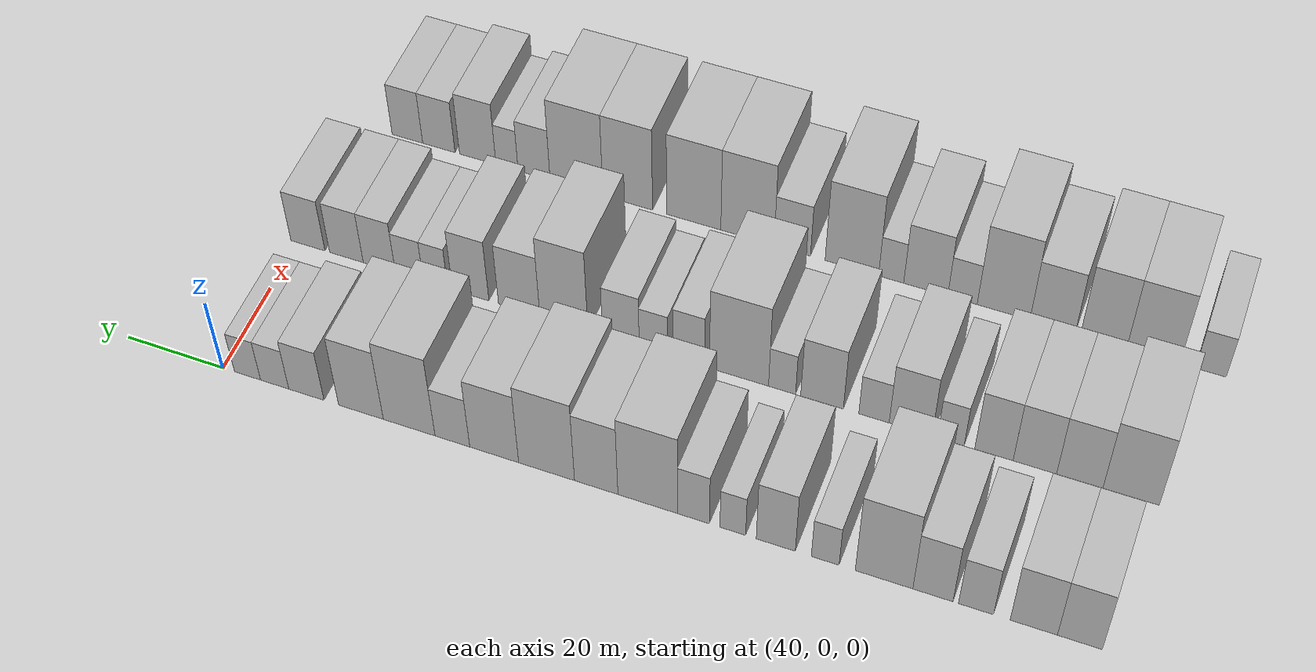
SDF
<sdf version="1.6">
 <world name="default">
  <include><name>ground_plane_1</name><uri>model://HANNAS_ground_plane</uri></include>
  <model name="building_21">
   <static>1</static>
   <pose>50.0000 -165.5699 0 0.000000 0.000000 0.000000</pose>
   <link name="link">
    <pose>0 0 9.00 0 0 0</pose>
    <collision name="collision"><geometry><box><size>20.0000 7.9845 18.0000</size></box></geometry></collision>
    <visual name="visual">
     <cast_shadows>0</cast_shadows>
     <geometry><box><size>20.0000 7.9845 18.0000</size></box></geometry>
     <material>
      <script>
       <uri>model://HANNAS_wall/materials/scripts</uri>
       <uri>model://HANNAS_wall/materials/textures</uri>
       <name>vrc/HANNAS_wall</name>
      </script>
     </material>
    </visual>
   </link>
  </model>
  <model name="building_22">
   <static>1</static>
   <pose>50.0000 -157.3388 0 0.000000 0.000000 0.000000</pose>
   <link name="link">
    <pose>0 0 9.00 0 0 0</pose>
    <collision name="collision"><geometry><box><size>20.0000 8.4777 18.0000</size></box></geometry></collision>
    <visual name="visual">
     <cast_shadows>0</cast_shadows>
     <geometry><box><size>20.0000 8.4777 18.0000</size></box></geometry>
     <material>
      <script>
       <uri>model://HANNAS_wall/materials/scripts</uri>
       <uri>model://HANNAS_wall/materials/textures</uri>
       <name>vrc/HANNAS_wall</name>
      </script>
     </material>
    </visual>
   </link>
  </model>
  <model name="building_23">
   <static>1</static>
   <pose>50.0000 -146.9242 0 0.000000 0.000000 0.000000</pose>
   <link name="link">
    <pose>0 0 7.50 0 0 0</pose>
    <collision name="collision"><geometry><box><size>20.0000 6.3514 15.0000</size></box></geometry></collision>
    <visual name="visual">
     <cast_shadows>0</cast_shadows>
     <geometry><box><size>20.0000 6.3514 15.0000</size></box></geometry>
     <material>
      <script>
       <uri>model://HANNAS_wall/materials/scripts</uri>
       <uri>model://HANNAS_wall/materials/textures</uri>
       <name>vrc/HANNAS_wall</name>
      </script>
     </material>
    </visual>
   </link>
  </model>
  <model name="building_24">
   <static>1</static>
   <pose>50.0000 -139.0835 0 0.000000 0.000000 0.000000</pose>
   <link name="link">
    <pose>0 0 9.00 0 0 0</pose>
    <collision name="collision"><geometry><box><size>20.0000 7.3302 18.0000</size></box></geometry></collision>
    <visual name="visual">
     <cast_shadows>0</cast_shadows>
     <geometry><box><size>20.0000 7.3302 18.0000</size></box></geometry>
     <material>
      <script>
       <uri>model://HANNAS_wall/materials/scripts</uri>
       <uri>model://HANNAS_wall/materials/textures</uri>
       <name>vrc/HANNAS_wall</name>
      </script>
     </material>
    </visual>
   </link>
  </model>
  <model name="building_25">
   <static>1</static>
   <pose>50.0000 -130.1029 0 0.000000 0.000000 0.000000</pose>
   <link name="link">
    <pose>0 0 12.00 0 0 0</pose>
    <collision name="collision"><geometry><box><size>20.0000 10.6309 24.0000</size></box></geometry></collision>
    <visual name="visual">
     <cast_shadows>0</cast_shadows>
     <geometry><box><size>20.0000 10.6309 24.0000</size></box></geometry>
     <material>
      <script>
       <uri>model://HANNAS_wall/materials/scripts</uri>
       <uri>model://HANNAS_wall/materials/textures</uri>
       <name>vrc/HANNAS_wall</name>
      </script>
     </material>
    </visual>
   </link>
  </model>
  <model name="building_26">
   <static>1</static>
   <pose>50.0000 -119.1992 0 0.000000 0.000000 0.000000</pose>
   <link name="link">
    <pose>0 0 6.00 0 0 0</pose>
    <collision name="collision"><geometry><box><size>20.0000 5.1765 12.0000</size></box></geometry></collision>
    <visual name="visual">
     <cast_shadows>0</cast_shadows>
     <geometry><box><size>20.0000 5.1765 12.0000</size></box></geometry>
     <material>
      <script>
       <uri>model://HANNAS_wall/materials/scripts</uri>
       <uri>model://HANNAS_wall/materials/textures</uri>
       <name>vrc/HANNAS_wall</name>
      </script>
     </material>
    </visual>
   </link>
  </model>
  <model name="building_27">
   <static>1</static>
   <pose>50.0000 -109.9316 0 0.000000 0.000000 0.000000</pose>
   <link name="link">
    <pose>0 0 9.00 0 0 0</pose>
    <collision name="collision"><geometry><box><size>20.0000 7.3586 18.0000</size></box></geometry></collision>
    <visual name="visual">
     <cast_shadows>0</cast_shadows>
     <geometry><box><size>20.0000 7.3586 18.0000</size></box></geometry>
     <material>
      <script>
       <uri>model://HANNAS_wall/materials/scripts</uri>
       <uri>model://HANNAS_wall/materials/textures</uri>
       <name>vrc/HANNAS_wall</name>
      </script>
     </material>
    </visual>
   </link>
  </model>
  <model name="building_28">
   <static>1</static>
   <pose>50.0000 -101.8058 0 0.000000 0.000000 0.000000</pose>
   <link name="link">
    <pose>0 0 6.00 0 0 0</pose>
    <collision name="collision"><geometry><box><size>20.0000 4.8930 12.0000</size></box></geometry></collision>
    <visual name="visual">
     <cast_shadows>0</cast_shadows>
     <geometry><box><size>20.0000 4.8930 12.0000</size></box></geometry>
     <material>
      <script>
       <uri>model://HANNAS_wall/materials/scripts</uri>
       <uri>model://HANNAS_wall/materials/textures</uri>
       <name>vrc/HANNAS_wall</name>
      </script>
     </material>
    </visual>
   </link>
  </model>
  <model name="building_29">
   <static>1</static>
   <pose>50.0000 -94.3049 0 0.000000 0.000000 0.000000</pose>
   <link name="link">
    <pose>0 0 7.50 0 0 0</pose>
    <collision name="collision"><geometry><box><size>20.0000 6.1090 15.0000</size></box></geometry></collision>
    <visual name="visual">
     <cast_shadows>0</cast_shadows>
     <geometry><box><size>20.0000 6.1090 15.0000</size></box></geometry>
     <material>
      <script>
       <uri>model://HANNAS_wall/materials/scripts</uri>
       <uri>model://HANNAS_wall/materials/textures</uri>
       <name>vrc/HANNAS_wall</name>
      </script>
     </material>
    </visual>
   </link>
  </model>
  <model name="building_30">
   <static>1</static>
   <pose>50.0000 -85.5007 0 0.000000 0.000000 0.000000</pose>
   <link name="link">
    <pose>0 0 12.00 0 0 0</pose>
    <collision name="collision"><geometry><box><size>20.0000 11.4992 24.0000</size></box></geometry></collision>
    <visual name="visual">
     <cast_shadows>0</cast_shadows>
     <geometry><box><size>20.0000 11.4992 24.0000</size></box></geometry>
     <material>
      <script>
       <uri>model://HANNAS_wall/materials/scripts</uri>
       <uri>model://HANNAS_wall/materials/textures</uri>
       <name>vrc/HANNAS_wall</name>
      </script>
     </material>
    </visual>
   </link>
  </model>
  <model name="building_31">
   <static>1</static>
   <pose>50.0000 -75.5200 0 0.000000 0.000000 0.000000</pose>
   <link name="link">
    <pose>0 0 10.50 0 0 0</pose>
    <collision name="collision"><geometry><box><size>20.0000 8.4622 21.0000</size></box></geometry></collision>
    <visual name="visual">
     <cast_shadows>0</cast_shadows>
     <geometry><box><size>20.0000 8.4622 21.0000</size></box></geometry>
     <material>
      <script>
       <uri>model://HANNAS_wall/materials/scripts</uri>
       <uri>model://HANNAS_wall/materials/textures</uri>
       <name>vrc/HANNAS_wall</name>
      </script>
     </material>
    </visual>
   </link>
  </model>
  <model name="building_32">
   <static>1</static>
   <pose>50.0000 -65.7874 0 0.000000 0.000000 0.000000</pose>
   <link name="link">
    <pose>0 0 12.00 0 0 0</pose>
    <collision name="collision"><geometry><box><size>20.0000 11.0031 24.0000</size></box></geometry></collision>
    <visual name="visual">
     <cast_shadows>0</cast_shadows>
     <geometry><box><size>20.0000 11.0031 24.0000</size></box></geometry>
     <material>
      <script>
       <uri>model://HANNAS_wall/materials/scripts</uri>
       <uri>model://HANNAS_wall/materials/textures</uri>
       <name>vrc/HANNAS_wall</name>
      </script>
     </material>
    </visual>
   </link>
  </model>
  <model name="building_33">
   <static>1</static>
   <pose>50.0000 -55.4217 0 0.000000 0.000000 0.000000</pose>
   <link name="link">
    <pose>0 0 10.50 0 0 0</pose>
    <collision name="collision"><geometry><box><size>20.0000 9.7284 21.0000</size></box></geometry></collision>
    <visual name="visual">
     <cast_shadows>0</cast_shadows>
     <geometry><box><size>20.0000 9.7284 21.0000</size></box></geometry>
     <material>
      <script>
       <uri>model://HANNAS_wall/materials/scripts</uri>
       <uri>model://HANNAS_wall/materials/textures</uri>
       <name>vrc/HANNAS_wall</name>
      </script>
     </material>
    </visual>
   </link>
  </model>
  <model name="building_34">
   <static>1</static>
   <pose>50.0000 -47.0706 0 0.000000 0.000000 0.000000</pose>
   <link name="link">
    <pose>0 0 7.50 0 0 0</pose>
    <collision name="collision"><geometry><box><size>20.0000 6.9736 15.0000</size></box></geometry></collision>
    <visual name="visual">
     <cast_shadows>0</cast_shadows>
     <geometry><box><size>20.0000 6.9736 15.0000</size></box></geometry>
     <material>
      <script>
       <uri>model://HANNAS_wall/materials/scripts</uri>
       <uri>model://HANNAS_wall/materials/textures</uri>
       <name>vrc/HANNAS_wall</name>
      </script>
     </material>
    </visual>
   </link>
  </model>
  <model name="building_35">
   <static>1</static>
   <pose>50.0000 -38.3505 0 0.000000 0.000000 0.000000</pose>
   <link name="link">
    <pose>0 0 12.00 0 0 0</pose>
    <collision name="collision"><geometry><box><size>20.0000 10.4667 24.0000</size></box></geometry></collision>
    <visual name="visual">
     <cast_shadows>0</cast_shadows>
     <geometry><box><size>20.0000 10.4667 24.0000</size></box></geometry>
     <material>
      <script>
       <uri>model://HANNAS_wall/materials/scripts</uri>
       <uri>model://HANNAS_wall/materials/textures</uri>
       <name>vrc/HANNAS_wall</name>
      </script>
     </material>
    </visual>
   </link>
  </model>
  <model name="building_36">
   <static>1</static>
   <pose>50.0000 -28.5436 0 0.000000 0.000000 0.000000</pose>
   <link name="link">
    <pose>0 0 10.50 0 0 0</pose>
    <collision name="collision"><geometry><box><size>20.0000 9.1469 21.0000</size></box></geometry></collision>
    <visual name="visual">
     <cast_shadows>0</cast_shadows>
     <geometry><box><size>20.0000 9.1469 21.0000</size></box></geometry>
     <material>
      <script>
       <uri>model://HANNAS_wall/materials/scripts</uri>
       <uri>model://HANNAS_wall/materials/textures</uri>
       <name>vrc/HANNAS_wall</name>
      </script>
     </material>
    </visual>
   </link>
  </model>
  <model name="building_37">
   <static>1</static>
   <pose>50.0000 -17.3323 0 0.000000 0.000000 0.000000</pose>
   <link name="link">
    <pose>0 0 7.50 0 0 0</pose>
    <collision name="collision"><geometry><box><size>20.0000 7.2758 15.0000</size></box></geometry></collision>
    <visual name="visual">
     <cast_shadows>0</cast_shadows>
     <geometry><box><size>20.0000 7.2758 15.0000</size></box></geometry>
     <material>
      <script>
       <uri>model://HANNAS_wall/materials/scripts</uri>
       <uri>model://HANNAS_wall/materials/textures</uri>
       <name>vrc/HANNAS_wall</name>
      </script>
     </material>
    </visual>
   </link>
  </model>
  <model name="building_38">
   <static>1</static>
   <pose>50.0000 -10.7607 0 0.000000 0.000000 0.000000</pose>
   <link name="link">
    <pose>0 0 6.00 0 0 0</pose>
    <collision name="collision"><geometry><box><size>20.0000 5.8672 12.0000</size></box></geometry></collision>
    <visual name="visual">
     <cast_shadows>0</cast_shadows>
     <geometry><box><size>20.0000 5.8672 12.0000</size></box></geometry>
     <material>
      <script>
       <uri>model://HANNAS_wall/materials/scripts</uri>
       <uri>model://HANNAS_wall/materials/textures</uri>
       <name>vrc/HANNAS_wall</name>
      </script>
     </material>
    </visual>
   </link>
  </model>
  <model name="building_39">
   <static>1</static>
   <pose>50.0000 -5.1017 0 0.000000 0.000000 0.000000</pose>
   <link name="link">
    <pose>0 0 6.00 0 0 0</pose>
    <collision name="collision"><geometry><box><size>20.0000 5.4508 12.0000</size></box></geometry></collision>
    <visual name="visual">
     <cast_shadows>0</cast_shadows>
     <geometry><box><size>20.0000 5.4508 12.0000</size></box></geometry>
     <material>
      <script>
       <uri>model://HANNAS_wall/materials/scripts</uri>
       <uri>model://HANNAS_wall/materials/textures</uri>
       <name>vrc/HANNAS_wall</name>
      </script>
     </material>
    </visual>
   </link>
  </model>
  <model name="building_102">
   <static>1</static>
   <pose>82.0000 -166.7770 0 0.000000 0.000000 0.000000</pose>
   <link name="link">
    <pose>0 0 10.50 0 0 0</pose>
    <collision name="collision"><geometry><box><size>20.0000 10.4175 21.0000</size></box></geometry></collision>
    <visual name="visual">
     <cast_shadows>0</cast_shadows>
     <geometry><box><size>20.0000 10.4175 21.0000</size></box></geometry>
     <material>
      <script>
       <uri>model://HANNAS_wall/materials/scripts</uri>
       <uri>model://HANNAS_wall/materials/textures</uri>
       <name>vrc/HANNAS_wall</name>
      </script>
     </material>
    </visual>
   </link>
  </model>
  <model name="building_103">
   <static>1</static>
   <pose>82.0000 -157.2469 0 0.000000 0.000000 0.000000</pose>
   <link name="link">
    <pose>0 0 9.00 0 0 0</pose>
    <collision name="collision"><geometry><box><size>20.0000 8.6427 18.0000</size></box></geometry></collision>
    <visual name="visual">
     <cast_shadows>0</cast_shadows>
     <geometry><box><size>20.0000 8.6427 18.0000</size></box></geometry>
     <material>
      <script>
       <uri>model://HANNAS_wall/materials/scripts</uri>
       <uri>model://HANNAS_wall/materials/textures</uri>
       <name>vrc/HANNAS_wall</name>
      </script>
     </material>
    </visual>
   </link>
  </model>
  <model name="building_104">
   <static>1</static>
   <pose>82.0000 -148.8322 0 0.000000 0.000000 0.000000</pose>
   <link name="link">
    <pose>0 0 9.00 0 0 0</pose>
    <collision name="collision"><geometry><box><size>20.0000 8.1868 18.0000</size></box></geometry></collision>
    <visual name="visual">
     <cast_shadows>0</cast_shadows>
     <geometry><box><size>20.0000 8.1868 18.0000</size></box></geometry>
     <material>
      <script>
       <uri>model://HANNAS_wall/materials/scripts</uri>
       <uri>model://HANNAS_wall/materials/textures</uri>
       <name>vrc/HANNAS_wall</name>
      </script>
     </material>
    </visual>
   </link>
  </model>
  <model name="building_105">
   <static>1</static>
   <pose>82.0000 -141.0958 0 0.000000 0.000000 0.000000</pose>
   <link name="link">
    <pose>0 0 9.00 0 0 0</pose>
    <collision name="collision"><geometry><box><size>20.0000 7.2859 18.0000</size></box></geometry></collision>
    <visual name="visual">
     <cast_shadows>0</cast_shadows>
     <geometry><box><size>20.0000 7.2859 18.0000</size></box></geometry>
     <material>
      <script>
       <uri>model://HANNAS_wall/materials/scripts</uri>
       <uri>model://HANNAS_wall/materials/textures</uri>
       <name>vrc/HANNAS_wall</name>
      </script>
     </material>
    </visual>
   </link>
  </model>
  <model name="building_106">
   <static>1</static>
   <pose>82.0000 -132.8934 0 0.000000 0.000000 0.000000</pose>
   <link name="link">
    <pose>0 0 6.00 0 0 0</pose>
    <collision name="collision"><geometry><box><size>20.0000 5.1189 12.0000</size></box></geometry></collision>
    <visual name="visual">
     <cast_shadows>0</cast_shadows>
     <geometry><box><size>20.0000 5.1189 12.0000</size></box></geometry>
     <material>
      <script>
       <uri>model://HANNAS_wall/materials/scripts</uri>
       <uri>model://HANNAS_wall/materials/textures</uri>
       <name>vrc/HANNAS_wall</name>
      </script>
     </material>
    </visual>
   </link>
  </model>
  <model name="building_107">
   <static>1</static>
   <pose>82.0000 -125.1840 0 0.000000 0.000000 0.000000</pose>
   <link name="link">
    <pose>0 0 9.00 0 0 0</pose>
    <collision name="collision"><geometry><box><size>20.0000 8.3000 18.0000</size></box></geometry></collision>
    <visual name="visual">
     <cast_shadows>0</cast_shadows>
     <geometry><box><size>20.0000 8.3000 18.0000</size></box></geometry>
     <material>
      <script>
       <uri>model://HANNAS_wall/materials/scripts</uri>
       <uri>model://HANNAS_wall/materials/textures</uri>
       <name>vrc/HANNAS_wall</name>
      </script>
     </material>
    </visual>
   </link>
  </model>
  <model name="building_108">
   <static>1</static>
   <pose>82.0000 -118.0866 0 0.000000 0.000000 0.000000</pose>
   <link name="link">
    <pose>0 0 6.00 0 0 0</pose>
    <collision name="collision"><geometry><box><size>20.0000 5.8947 12.0000</size></box></geometry></collision>
    <visual name="visual">
     <cast_shadows>0</cast_shadows>
     <geometry><box><size>20.0000 5.8947 12.0000</size></box></geometry>
     <material>
      <script>
       <uri>model://HANNAS_wall/materials/scripts</uri>
       <uri>model://HANNAS_wall/materials/textures</uri>
       <name>vrc/HANNAS_wall</name>
      </script>
     </material>
    </visual>
   </link>
  </model>
  <model name="building_109">
   <static>1</static>
   <pose>82.0000 -107.9556 0 0.000000 0.000000 0.000000</pose>
   <link name="link">
    <pose>0 0 9.00 0 0 0</pose>
    <collision name="collision"><geometry><box><size>20.0000 8.3673 18.0000</size></box></geometry></collision>
    <visual name="visual">
     <cast_shadows>0</cast_shadows>
     <geometry><box><size>20.0000 8.3673 18.0000</size></box></geometry>
     <material>
      <script>
       <uri>model://HANNAS_wall/materials/scripts</uri>
       <uri>model://HANNAS_wall/materials/textures</uri>
       <name>vrc/HANNAS_wall</name>
      </script>
     </material>
    </visual>
   </link>
  </model>
  <model name="building_110">
   <static>1</static>
   <pose>82.0000 -100.1022 0 0.000000 0.000000 0.000000</pose>
   <link name="link">
    <pose>0 0 6.00 0 0 0</pose>
    <collision name="collision"><geometry><box><size>20.0000 5.3394 12.0000</size></box></geometry></collision>
    <visual name="visual">
     <cast_shadows>0</cast_shadows>
     <geometry><box><size>20.0000 5.3394 12.0000</size></box></geometry>
     <material>
      <script>
       <uri>model://HANNAS_wall/materials/scripts</uri>
       <uri>model://HANNAS_wall/materials/textures</uri>
       <name>vrc/HANNAS_wall</name>
      </script>
     </material>
    </visual>
   </link>
  </model>
  <model name="building_111">
   <static>1</static>
   <pose>82.0000 -91.5412 0 0.000000 0.000000 0.000000</pose>
   <link name="link">
    <pose>0 0 12.00 0 0 0</pose>
    <collision name="collision"><geometry><box><size>20.0000 11.7826 24.0000</size></box></geometry></collision>
    <visual name="visual">
     <cast_shadows>0</cast_shadows>
     <geometry><box><size>20.0000 11.7826 24.0000</size></box></geometry>
     <material>
      <script>
       <uri>model://HANNAS_wall/materials/scripts</uri>
       <uri>model://HANNAS_wall/materials/textures</uri>
       <name>vrc/HANNAS_wall</name>
      </script>
     </material>
    </visual>
   </link>
  </model>
  <model name="building_112">
   <static>1</static>
   <pose>82.0000 -81.4755 0 0.000000 0.000000 0.000000</pose>
   <link name="link">
    <pose>0 0 7.50 0 0 0</pose>
    <collision name="collision"><geometry><box><size>20.0000 6.3488 15.0000</size></box></geometry></collision>
    <visual name="visual">
     <cast_shadows>0</cast_shadows>
     <geometry><box><size>20.0000 6.3488 15.0000</size></box></geometry>
     <material>
      <script>
       <uri>model://HANNAS_wall/materials/scripts</uri>
       <uri>model://HANNAS_wall/materials/textures</uri>
       <name>vrc/HANNAS_wall</name>
      </script>
     </material>
    </visual>
   </link>
  </model>
  <model name="building_113">
   <static>1</static>
   <pose>82.0000 -74.4091 0 0.000000 0.000000 0.000000</pose>
   <link name="link">
    <pose>0 0 6.00 0 0 0</pose>
    <collision name="collision"><geometry><box><size>20.0000 5.7841 12.0000</size></box></geometry></collision>
    <visual name="visual">
     <cast_shadows>0</cast_shadows>
     <geometry><box><size>20.0000 5.7841 12.0000</size></box></geometry>
     <material>
      <script>
       <uri>model://HANNAS_wall/materials/scripts</uri>
       <uri>model://HANNAS_wall/materials/textures</uri>
       <name>vrc/HANNAS_wall</name>
      </script>
     </material>
    </visual>
   </link>
  </model>
  <model name="building_114">
   <static>1</static>
   <pose>82.0000 -67.7777 0 0.000000 0.000000 0.000000</pose>
   <link name="link">
    <pose>0 0 7.50 0 0 0</pose>
    <collision name="collision"><geometry><box><size>20.0000 7.4786 15.0000</size></box></geometry></collision>
    <visual name="visual">
     <cast_shadows>0</cast_shadows>
     <geometry><box><size>20.0000 7.4786 15.0000</size></box></geometry>
     <material>
      <script>
       <uri>model://HANNAS_wall/materials/scripts</uri>
       <uri>model://HANNAS_wall/materials/textures</uri>
       <name>vrc/HANNAS_wall</name>
      </script>
     </material>
    </visual>
   </link>
  </model>
  <model name="building_115">
   <static>1</static>
   <pose>82.0000 -56.0858 0 0.000000 0.000000 0.000000</pose>
   <link name="link">
    <pose>0 0 12.00 0 0 0</pose>
    <collision name="collision"><geometry><box><size>20.0000 9.9053 24.0000</size></box></geometry></collision>
    <visual name="visual">
     <cast_shadows>0</cast_shadows>
     <geometry><box><size>20.0000 9.9053 24.0000</size></box></geometry>
     <material>
      <script>
       <uri>model://HANNAS_wall/materials/scripts</uri>
       <uri>model://HANNAS_wall/materials/textures</uri>
       <name>vrc/HANNAS_wall</name>
      </script>
     </material>
    </visual>
   </link>
  </model>
  <model name="building_116">
   <static>1</static>
   <pose>82.0000 -46.8359 0 0.000000 0.000000 0.000000</pose>
   <link name="link">
    <pose>0 0 9.00 0 0 0</pose>
    <collision name="collision"><geometry><box><size>20.0000 8.5946 18.0000</size></box></geometry></collision>
    <visual name="visual">
     <cast_shadows>0</cast_shadows>
     <geometry><box><size>20.0000 8.5946 18.0000</size></box></geometry>
     <material>
      <script>
       <uri>model://HANNAS_wall/materials/scripts</uri>
       <uri>model://HANNAS_wall/materials/textures</uri>
       <name>vrc/HANNAS_wall</name>
      </script>
     </material>
    </visual>
   </link>
  </model>
  <model name="building_117">
   <static>1</static>
   <pose>82.0000 -36.7250 0 0.000000 0.000000 0.000000</pose>
   <link name="link">
    <pose>0 0 9.00 0 0 0</pose>
    <collision name="collision"><geometry><box><size>20.0000 7.6273 18.0000</size></box></geometry></collision>
    <visual name="visual">
     <cast_shadows>0</cast_shadows>
     <geometry><box><size>20.0000 7.6273 18.0000</size></box></geometry>
     <material>
      <script>
       <uri>model://HANNAS_wall/materials/scripts</uri>
       <uri>model://HANNAS_wall/materials/textures</uri>
       <name>vrc/HANNAS_wall</name>
      </script>
     </material>
    </visual>
   </link>
  </model>
  <model name="building_118">
   <static>1</static>
   <pose>82.0000 -29.3185 0 0.000000 0.000000 0.000000</pose>
   <link name="link">
    <pose>0 0 6.00 0 0 0</pose>
    <collision name="collision"><geometry><box><size>20.0000 5.1856 12.0000</size></box></geometry></collision>
    <visual name="visual">
     <cast_shadows>0</cast_shadows>
     <geometry><box><size>20.0000 5.1856 12.0000</size></box></geometry>
     <material>
      <script>
       <uri>model://HANNAS_wall/materials/scripts</uri>
       <uri>model://HANNAS_wall/materials/textures</uri>
       <name>vrc/HANNAS_wall</name>
      </script>
     </material>
    </visual>
   </link>
  </model>
  <model name="building_119">
   <static>1</static>
   <pose>82.0000 -23.7604 0 0.000000 0.000000 0.000000</pose>
   <link name="link">
    <pose>0 0 6.00 0 0 0</pose>
    <collision name="collision"><geometry><box><size>20.0000 5.9307 12.0000</size></box></geometry></collision>
    <visual name="visual">
     <cast_shadows>0</cast_shadows>
     <geometry><box><size>20.0000 5.9307 12.0000</size></box></geometry>
     <material>
      <script>
       <uri>model://HANNAS_wall/materials/scripts</uri>
       <uri>model://HANNAS_wall/materials/textures</uri>
       <name>vrc/HANNAS_wall</name>
      </script>
     </material>
    </visual>
   </link>
  </model>
  <model name="building_120">
   <static>1</static>
   <pose>82.0000 -17.3497 0 0.000000 0.000000 0.000000</pose>
   <link name="link">
    <pose>0 0 7.50 0 0 0</pose>
    <collision name="collision"><geometry><box><size>20.0000 6.8907 15.0000</size></box></geometry></collision>
    <visual name="visual">
     <cast_shadows>0</cast_shadows>
     <geometry><box><size>20.0000 6.8907 15.0000</size></box></geometry>
     <material>
      <script>
       <uri>model://HANNAS_wall/materials/scripts</uri>
       <uri>model://HANNAS_wall/materials/textures</uri>
       <name>vrc/HANNAS_wall</name>
      </script>
     </material>
    </visual>
   </link>
  </model>
  <model name="building_121">
   <static>1</static>
   <pose>82.0000 -10.2856 0 0.000000 0.000000 0.000000</pose>
   <link name="link">
    <pose>0 0 7.50 0 0 0</pose>
    <collision name="collision"><geometry><box><size>20.0000 7.2375 15.0000</size></box></geometry></collision>
    <visual name="visual">
     <cast_shadows>0</cast_shadows>
     <geometry><box><size>20.0000 7.2375 15.0000</size></box></geometry>
     <material>
      <script>
       <uri>model://HANNAS_wall/materials/scripts</uri>
       <uri>model://HANNAS_wall/materials/textures</uri>
       <name>vrc/HANNAS_wall</name>
      </script>
     </material>
    </visual>
   </link>
  </model>
  <model name="building_122">
   <static>1</static>
   <pose>82.0000 -1.9689 0 0.000000 0.000000 0.000000</pose>
   <link name="link">
    <pose>0 0 7.50 0 0 0</pose>
    <collision name="collision"><geometry><box><size>20.0000 7.3959 15.0000</size></box></geometry></collision>
    <visual name="visual">
     <cast_shadows>0</cast_shadows>
     <geometry><box><size>20.0000 7.3959 15.0000</size></box></geometry>
     <material>
      <script>
       <uri>model://HANNAS_wall/materials/scripts</uri>
       <uri>model://HANNAS_wall/materials/textures</uri>
       <name>vrc/HANNAS_wall</name>
      </script>
     </material>
    </visual>
   </link>
  </model>
  <model name="building_177">
   <static>1</static>
   <pose>114.0000 -174.2669 0 0.000000 0.000000 0.000000</pose>
   <link name="link">
    <pose>0 0 6.00 0 0 0</pose>
    <collision name="collision"><geometry><box><size>20.0000 5.8668 12.0000</size></box></geometry></collision>
    <visual name="visual">
     <cast_shadows>0</cast_shadows>
     <geometry><box><size>20.0000 5.8668 12.0000</size></box></geometry>
     <material>
      <script>
       <uri>model://HANNAS_wall/materials/scripts</uri>
       <uri>model://HANNAS_wall/materials/textures</uri>
       <name>vrc/HANNAS_wall</name>
      </script>
     </material>
    </visual>
   </link>
  </model>
  <model name="building_178">
   <static>1</static>
   <pose>114.0000 -163.2128 0 0.000000 0.000000 0.000000</pose>
   <link name="link">
    <pose>0 0 10.50 0 0 0</pose>
    <collision name="collision"><geometry><box><size>20.0000 10.2414 21.0000</size></box></geometry></collision>
    <visual name="visual">
     <cast_shadows>0</cast_shadows>
     <geometry><box><size>20.0000 10.2414 21.0000</size></box></geometry>
     <material>
      <script>
       <uri>model://HANNAS_wall/materials/scripts</uri>
       <uri>model://HANNAS_wall/materials/textures</uri>
       <name>vrc/HANNAS_wall</name>
      </script>
     </material>
    </visual>
   </link>
  </model>
  <model name="building_179">
   <static>1</static>
   <pose>114.0000 -153.5907 0 0.000000 0.000000 0.000000</pose>
   <link name="link">
    <pose>0 0 10.50 0 0 0</pose>
    <collision name="collision"><geometry><box><size>20.0000 9.0029 21.0000</size></box></geometry></collision>
    <visual name="visual">
     <cast_shadows>0</cast_shadows>
     <geometry><box><size>20.0000 9.0029 21.0000</size></box></geometry>
     <material>
      <script>
       <uri>model://HANNAS_wall/materials/scripts</uri>
       <uri>model://HANNAS_wall/materials/textures</uri>
       <name>vrc/HANNAS_wall</name>
      </script>
     </material>
    </visual>
   </link>
  </model>
  <model name="building_180">
   <static>1</static>
   <pose>114.0000 -143.6265 0 0.000000 0.000000 0.000000</pose>
   <link name="link">
    <pose>0 0 9.00 0 0 0</pose>
    <collision name="collision"><geometry><box><size>20.0000 8.9255 18.0000</size></box></geometry></collision>
    <visual name="visual">
     <cast_shadows>0</cast_shadows>
     <geometry><box><size>20.0000 8.9255 18.0000</size></box></geometry>
     <material>
      <script>
       <uri>model://HANNAS_wall/materials/scripts</uri>
       <uri>model://HANNAS_wall/materials/textures</uri>
       <name>vrc/HANNAS_wall</name>
      </script>
     </material>
    </visual>
   </link>
  </model>
  <model name="building_181">
   <static>1</static>
   <pose>114.0000 -133.9279 0 0.000000 0.000000 0.000000</pose>
   <link name="link">
    <pose>0 0 12.00 0 0 0</pose>
    <collision name="collision"><geometry><box><size>20.0000 10.4717 24.0000</size></box></geometry></collision>
    <visual name="visual">
     <cast_shadows>0</cast_shadows>
     <geometry><box><size>20.0000 10.4717 24.0000</size></box></geometry>
     <material>
      <script>
       <uri>model://HANNAS_wall/materials/scripts</uri>
       <uri>model://HANNAS_wall/materials/textures</uri>
       <name>vrc/HANNAS_wall</name>
      </script>
     </material>
    </visual>
   </link>
  </model>
  <model name="building_182">
   <static>1</static>
   <pose>114.0000 -125.7571 0 0.000000 0.000000 0.000000</pose>
   <link name="link">
    <pose>0 0 6.00 0 0 0</pose>
    <collision name="collision"><geometry><box><size>20.0000 5.8699 12.0000</size></box></geometry></collision>
    <visual name="visual">
     <cast_shadows>0</cast_shadows>
     <geometry><box><size>20.0000 5.8699 12.0000</size></box></geometry>
     <material>
      <script>
       <uri>model://HANNAS_wall/materials/scripts</uri>
       <uri>model://HANNAS_wall/materials/textures</uri>
       <name>vrc/HANNAS_wall</name>
      </script>
     </material>
    </visual>
   </link>
  </model>
  <model name="building_183">
   <static>1</static>
   <pose>114.0000 -118.3866 0 0.000000 0.000000 0.000000</pose>
   <link name="link">
    <pose>0 0 9.00 0 0 0</pose>
    <collision name="collision"><geometry><box><size>20.0000 8.8711 18.0000</size></box></geometry></collision>
    <visual name="visual">
     <cast_shadows>0</cast_shadows>
     <geometry><box><size>20.0000 8.8711 18.0000</size></box></geometry>
     <material>
      <script>
       <uri>model://HANNAS_wall/materials/scripts</uri>
       <uri>model://HANNAS_wall/materials/textures</uri>
       <name>vrc/HANNAS_wall</name>
      </script>
     </material>
    </visual>
   </link>
  </model>
  <model name="building_184">
   <static>1</static>
   <pose>114.0000 -111.4020 0 0.000000 0.000000 0.000000</pose>
   <link name="link">
    <pose>0 0 6.00 0 0 0</pose>
    <collision name="collision"><geometry><box><size>20.0000 5.0980 12.0000</size></box></geometry></collision>
    <visual name="visual">
     <cast_shadows>0</cast_shadows>
     <geometry><box><size>20.0000 5.0980 12.0000</size></box></geometry>
     <material>
      <script>
       <uri>model://HANNAS_wall/materials/scripts</uri>
       <uri>model://HANNAS_wall/materials/textures</uri>
       <name>vrc/HANNAS_wall</name>
      </script>
     </material>
    </visual>
   </link>
  </model>
  <model name="building_185">
   <static>1</static>
   <pose>114.0000 -103.4033 0 0.000000 0.000000 0.000000</pose>
   <link name="link">
    <pose>0 0 12.00 0 0 0</pose>
    <collision name="collision"><geometry><box><size>20.0000 10.8994 24.0000</size></box></geometry></collision>
    <visual name="visual">
     <cast_shadows>0</cast_shadows>
     <geometry><box><size>20.0000 10.8994 24.0000</size></box></geometry>
     <material>
      <script>
       <uri>model://HANNAS_wall/materials/scripts</uri>
       <uri>model://HANNAS_wall/materials/textures</uri>
       <name>vrc/HANNAS_wall</name>
      </script>
     </material>
    </visual>
   </link>
  </model>
  <model name="building_186">
   <static>1</static>
   <pose>114.0000 -91.2038 0 0.000000 0.000000 0.000000</pose>
   <link name="link">
    <pose>0 0 7.50 0 0 0</pose>
    <collision name="collision"><geometry><box><size>20.0000 7.4997 15.0000</size></box></geometry></collision>
    <visual name="visual">
     <cast_shadows>0</cast_shadows>
     <geometry><box><size>20.0000 7.4997 15.0000</size></box></geometry>
     <material>
      <script>
       <uri>model://HANNAS_wall/materials/scripts</uri>
       <uri>model://HANNAS_wall/materials/textures</uri>
       <name>vrc/HANNAS_wall</name>
      </script>
     </material>
    </visual>
   </link>
  </model>
  <model name="building_187">
   <static>1</static>
   <pose>114.0000 -81.8974 0 0.000000 0.000000 0.000000</pose>
   <link name="link">
    <pose>0 0 12.00 0 0 0</pose>
    <collision name="collision"><geometry><box><size>20.0000 11.1130 24.0000</size></box></geometry></collision>
    <visual name="visual">
     <cast_shadows>0</cast_shadows>
     <geometry><box><size>20.0000 11.1130 24.0000</size></box></geometry>
     <material>
      <script>
       <uri>model://HANNAS_wall/materials/scripts</uri>
       <uri>model://HANNAS_wall/materials/textures</uri>
       <name>vrc/HANNAS_wall</name>
      </script>
     </material>
    </visual>
   </link>
  </model>
  <model name="building_188">
   <static>1</static>
   <pose>114.0000 -70.6598 0 0.000000 0.000000 0.000000</pose>
   <link name="link">
    <pose>0 0 12.00 0 0 0</pose>
    <collision name="collision"><geometry><box><size>20.0000 11.3623 24.0000</size></box></geometry></collision>
    <visual name="visual">
     <cast_shadows>0</cast_shadows>
     <geometry><box><size>20.0000 11.3623 24.0000</size></box></geometry>
     <material>
      <script>
       <uri>model://HANNAS_wall/materials/scripts</uri>
       <uri>model://HANNAS_wall/materials/textures</uri>
       <name>vrc/HANNAS_wall</name>
      </script>
     </material>
    </visual>
   </link>
  </model>
  <model name="building_189">
   <static>1</static>
   <pose>114.0000 -56.6817 0 0.000000 0.000000 0.000000</pose>
   <link name="link">
    <pose>0 0 12.00 0 0 0</pose>
    <collision name="collision"><geometry><box><size>20.0000 10.5938 24.0000</size></box></geometry></collision>
    <visual name="visual">
     <cast_shadows>0</cast_shadows>
     <geometry><box><size>20.0000 10.5938 24.0000</size></box></geometry>
     <material>
      <script>
       <uri>model://HANNAS_wall/materials/scripts</uri>
       <uri>model://HANNAS_wall/materials/textures</uri>
       <name>vrc/HANNAS_wall</name>
      </script>
     </material>
    </visual>
   </link>
  </model>
  <model name="building_190">
   <static>1</static>
   <pose>114.0000 -45.6962 0 0.000000 0.000000 0.000000</pose>
   <link name="link">
    <pose>0 0 12.00 0 0 0</pose>
    <collision name="collision"><geometry><box><size>20.0000 11.3774 24.0000</size></box></geometry></collision>
    <visual name="visual">
     <cast_shadows>0</cast_shadows>
     <geometry><box><size>20.0000 11.3774 24.0000</size></box></geometry>
     <material>
      <script>
       <uri>model://HANNAS_wall/materials/scripts</uri>
       <uri>model://HANNAS_wall/materials/textures</uri>
       <name>vrc/HANNAS_wall</name>
      </script>
     </material>
    </visual>
   </link>
  </model>
  <model name="building_191">
   <static>1</static>
   <pose>114.0000 -36.5373 0 0.000000 0.000000 0.000000</pose>
   <link name="link">
    <pose>0 0 7.50 0 0 0</pose>
    <collision name="collision"><geometry><box><size>20.0000 6.9403 15.0000</size></box></geometry></collision>
    <visual name="visual">
     <cast_shadows>0</cast_shadows>
     <geometry><box><size>20.0000 6.9403 15.0000</size></box></geometry>
     <material>
      <script>
       <uri>model://HANNAS_wall/materials/scripts</uri>
       <uri>model://HANNAS_wall/materials/textures</uri>
       <name>vrc/HANNAS_wall</name>
      </script>
     </material>
    </visual>
   </link>
  </model>
  <model name="building_192">
   <static>1</static>
   <pose>114.0000 -30.6481 0 0.000000 0.000000 0.000000</pose>
   <link name="link">
    <pose>0 0 6.00 0 0 0</pose>
    <collision name="collision"><geometry><box><size>20.0000 4.8379 12.0000</size></box></geometry></collision>
    <visual name="visual">
     <cast_shadows>0</cast_shadows>
     <geometry><box><size>20.0000 4.8379 12.0000</size></box></geometry>
     <material>
      <script>
       <uri>model://HANNAS_wall/materials/scripts</uri>
       <uri>model://HANNAS_wall/materials/textures</uri>
       <name>vrc/HANNAS_wall</name>
      </script>
     </material>
    </visual>
   </link>
  </model>
  <model name="building_193">
   <static>1</static>
   <pose>114.0000 -24.2297 0 0.000000 0.000000 0.000000</pose>
   <link name="link">
    <pose>0 0 9.00 0 0 0</pose>
    <collision name="collision"><geometry><box><size>20.0000 7.9990 18.0000</size></box></geometry></collision>
    <visual name="visual">
     <cast_shadows>0</cast_shadows>
     <geometry><box><size>20.0000 7.9990 18.0000</size></box></geometry>
     <material>
      <script>
       <uri>model://HANNAS_wall/materials/scripts</uri>
       <uri>model://HANNAS_wall/materials/textures</uri>
       <name>vrc/HANNAS_wall</name>
      </script>
     </material>
    </visual>
   </link>
  </model>
  <model name="building_194">
   <static>1</static>
   <pose>114.0000 -15.6508 0 0.000000 0.000000 0.000000</pose>
   <link name="link">
    <pose>0 0 7.50 0 0 0</pose>
    <collision name="collision"><geometry><box><size>20.0000 7.1587 15.0000</size></box></geometry></collision>
    <visual name="visual">
     <cast_shadows>0</cast_shadows>
     <geometry><box><size>20.0000 7.1587 15.0000</size></box></geometry>
     <material>
      <script>
       <uri>model://HANNAS_wall/materials/scripts</uri>
       <uri>model://HANNAS_wall/materials/textures</uri>
       <name>vrc/HANNAS_wall</name>
      </script>
     </material>
    </visual>
   </link>
  </model>
  <model name="building_195">
   <static>1</static>
   <pose>114.0000 -8.6739 0 0.000000 0.000000 0.000000</pose>
   <link name="link">
    <pose>0 0 7.50 0 0 0</pose>
    <collision name="collision"><geometry><box><size>20.0000 6.7951 15.0000</size></box></geometry></collision>
    <visual name="visual">
     <cast_shadows>0</cast_shadows>
     <geometry><box><size>20.0000 6.7951 15.0000</size></box></geometry>
     <material>
      <script>
       <uri>model://HANNAS_wall/materials/scripts</uri>
       <uri>model://HANNAS_wall/materials/textures</uri>
       <name>vrc/HANNAS_wall</name>
      </script>
     </material>
    </visual>
   </link>
  </model>
 </world>
</sdf>
